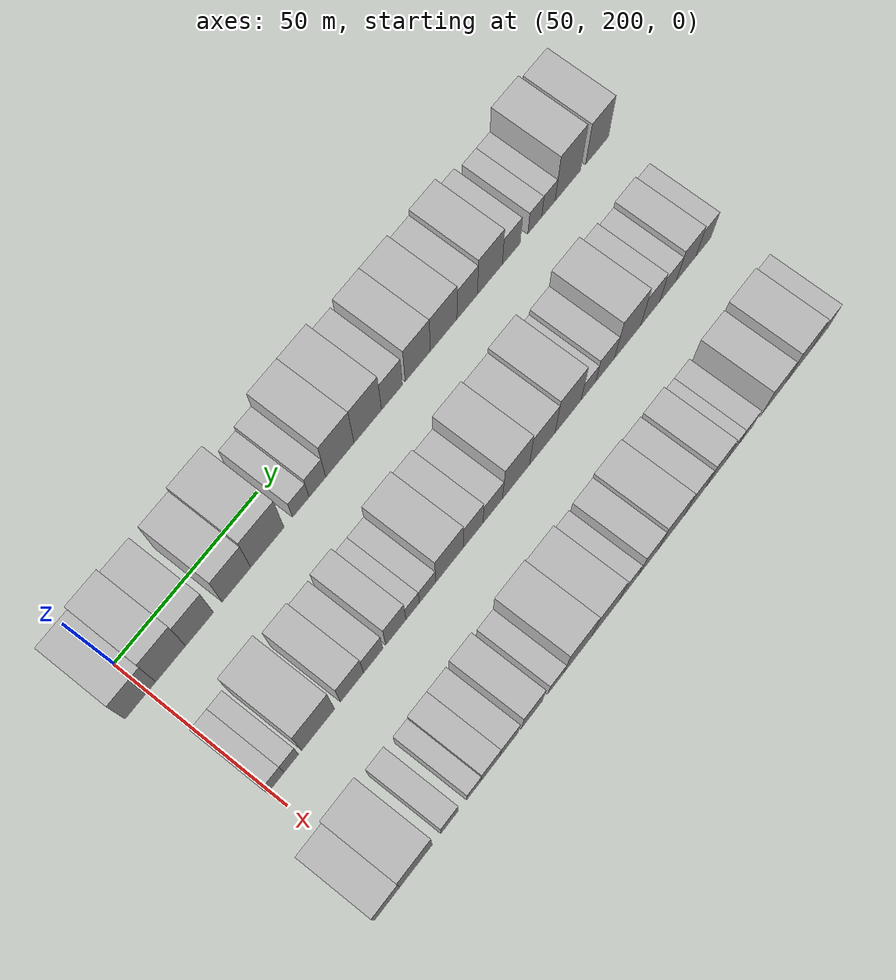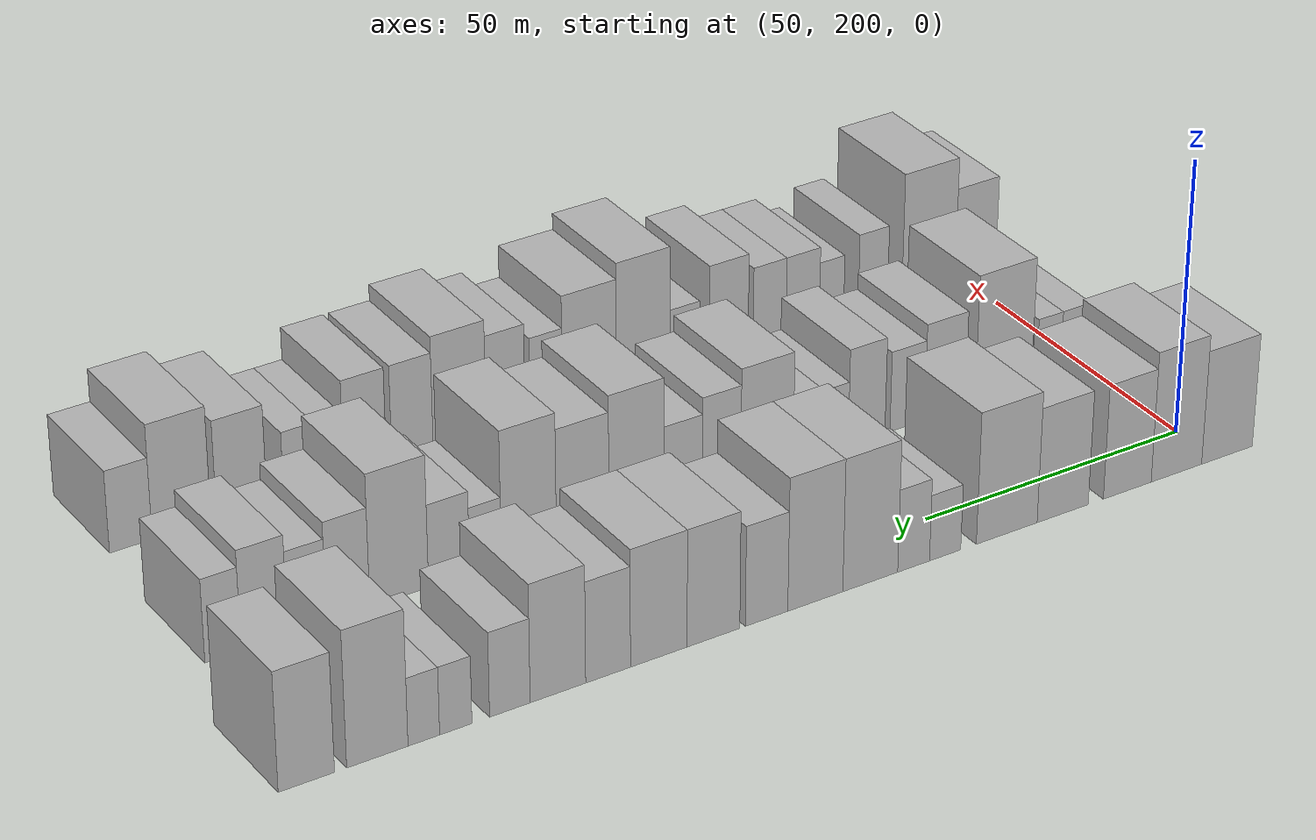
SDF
<sdf version="1.6">
 <world name="default">
  <model name="building_60">
   <static>1</static>
   <pose>50.0000 197.5814 0 0.000000 0.000000 0.000000</pose>
   <link name="link">
    <pose>0 0 10.50 0 0 0</pose>
    <collision name="collision"><geometry><box><size>20.0000 10.3683 21.0000</size></box></geometry></collision>
    <visual name="visual">
     <cast_shadows>0</cast_shadows>
     <geometry><box><size>20.0000 10.3683 21.0000</size></box></geometry>
     <material>
      <script>
       <uri>model://HANNAS_wall/materials/scripts</uri>
       <uri>model://HANNAS_wall/materials/textures</uri>
       <name>vrc/HANNAS_wall</name>
      </script>
     </material>
    </visual>
   </link>
  </model>
  <model name="building_61">
   <static>1</static>
   <pose>50.0000 207.8681 0 0.000000 0.000000 0.000000</pose>
   <link name="link">
    <pose>0 0 12.00 0 0 0</pose>
    <collision name="collision"><geometry><box><size>20.0000 10.2053 24.0000</size></box></geometry></collision>
    <visual name="visual">
     <cast_shadows>0</cast_shadows>
     <geometry><box><size>20.0000 10.2053 24.0000</size></box></geometry>
     <material>
      <script>
       <uri>model://HANNAS_wall/materials/scripts</uri>
       <uri>model://HANNAS_wall/materials/textures</uri>
       <name>vrc/HANNAS_wall</name>
      </script>
     </material>
    </visual>
   </link>
  </model>
  <model name="building_62">
   <static>1</static>
   <pose>50.0000 217.7414 0 0.000000 0.000000 0.000000</pose>
   <link name="link">
    <pose>0 0 10.50 0 0 0</pose>
    <collision name="collision"><geometry><box><size>20.0000 9.5413 21.0000</size></box></geometry></collision>
    <visual name="visual">
     <cast_shadows>0</cast_shadows>
     <geometry><box><size>20.0000 9.5413 21.0000</size></box></geometry>
     <material>
      <script>
       <uri>model://HANNAS_wall/materials/scripts</uri>
       <uri>model://HANNAS_wall/materials/textures</uri>
       <name>vrc/HANNAS_wall</name>
      </script>
     </material>
    </visual>
   </link>
  </model>
  <model name="building_63">
   <static>1</static>
   <pose>50.0000 230.5318 0 0.000000 0.000000 0.000000</pose>
   <link name="link">
    <pose>0 0 10.50 0 0 0</pose>
    <collision name="collision"><geometry><box><size>20.0000 10.0395 21.0000</size></box></geometry></collision>
    <visual name="visual">
     <cast_shadows>0</cast_shadows>
     <geometry><box><size>20.0000 10.0395 21.0000</size></box></geometry>
     <material>
      <script>
       <uri>model://HANNAS_wall/materials/scripts</uri>
       <uri>model://HANNAS_wall/materials/textures</uri>
       <name>vrc/HANNAS_wall</name>
      </script>
     </material>
    </visual>
   </link>
  </model>
  <model name="building_64">
   <static>1</static>
   <pose>50.0000 241.4395 0 0.000000 0.000000 0.000000</pose>
   <link name="link">
    <pose>0 0 12.00 0 0 0</pose>
    <collision name="collision"><geometry><box><size>20.0000 11.7759 24.0000</size></box></geometry></collision>
    <visual name="visual">
     <cast_shadows>0</cast_shadows>
     <geometry><box><size>20.0000 11.7759 24.0000</size></box></geometry>
     <material>
      <script>
       <uri>model://HANNAS_wall/materials/scripts</uri>
       <uri>model://HANNAS_wall/materials/textures</uri>
       <name>vrc/HANNAS_wall</name>
      </script>
     </material>
    </visual>
   </link>
  </model>
  <model name="building_65">
   <static>1</static>
   <pose>50.0000 253.3082 0 0.000000 0.000000 0.000000</pose>
   <link name="link">
    <pose>0 0 6.00 0 0 0</pose>
    <collision name="collision"><geometry><box><size>20.0000 5.9616 12.0000</size></box></geometry></collision>
    <visual name="visual">
     <cast_shadows>0</cast_shadows>
     <geometry><box><size>20.0000 5.9616 12.0000</size></box></geometry>
     <material>
      <script>
       <uri>model://HANNAS_wall/materials/scripts</uri>
       <uri>model://HANNAS_wall/materials/textures</uri>
       <name>vrc/HANNAS_wall</name>
      </script>
     </material>
    </visual>
   </link>
  </model>
  <model name="building_66">
   <static>1</static>
   <pose>50.0000 259.2945 0 0.000000 0.000000 0.000000</pose>
   <link name="link">
    <pose>0 0 7.50 0 0 0</pose>
    <collision name="collision"><geometry><box><size>20.0000 6.0109 15.0000</size></box></geometry></collision>
    <visual name="visual">
     <cast_shadows>0</cast_shadows>
     <geometry><box><size>20.0000 6.0109 15.0000</size></box></geometry>
     <material>
      <script>
       <uri>model://HANNAS_wall/materials/scripts</uri>
       <uri>model://HANNAS_wall/materials/textures</uri>
       <name>vrc/HANNAS_wall</name>
      </script>
     </material>
    </visual>
   </link>
  </model>
  <model name="building_67">
   <static>1</static>
   <pose>50.0000 267.4410 0 0.000000 0.000000 0.000000</pose>
   <link name="link">
    <pose>0 0 12.00 0 0 0</pose>
    <collision name="collision"><geometry><box><size>20.0000 10.2821 24.0000</size></box></geometry></collision>
    <visual name="visual">
     <cast_shadows>0</cast_shadows>
     <geometry><box><size>20.0000 10.2821 24.0000</size></box></geometry>
     <material>
      <script>
       <uri>model://HANNAS_wall/materials/scripts</uri>
       <uri>model://HANNAS_wall/materials/textures</uri>
       <name>vrc/HANNAS_wall</name>
      </script>
     </material>
    </visual>
   </link>
  </model>
  <model name="building_68">
   <static>1</static>
   <pose>50.0000 277.6601 0 0.000000 0.000000 0.000000</pose>
   <link name="link">
    <pose>0 0 12.00 0 0 0</pose>
    <collision name="collision"><geometry><box><size>20.0000 10.1560 24.0000</size></box></geometry></collision>
    <visual name="visual">
     <cast_shadows>0</cast_shadows>
     <geometry><box><size>20.0000 10.1560 24.0000</size></box></geometry>
     <material>
      <script>
       <uri>model://HANNAS_wall/materials/scripts</uri>
       <uri>model://HANNAS_wall/materials/textures</uri>
       <name>vrc/HANNAS_wall</name>
      </script>
     </material>
    </visual>
   </link>
  </model>
  <model name="building_69">
   <static>1</static>
   <pose>50.0000 286.6164 0 0.000000 0.000000 0.000000</pose>
   <link name="link">
    <pose>0 0 9.00 0 0 0</pose>
    <collision name="collision"><geometry><box><size>20.0000 7.7567 18.0000</size></box></geometry></collision>
    <visual name="visual">
     <cast_shadows>0</cast_shadows>
     <geometry><box><size>20.0000 7.7567 18.0000</size></box></geometry>
     <material>
      <script>
       <uri>model://HANNAS_wall/materials/scripts</uri>
       <uri>model://HANNAS_wall/materials/textures</uri>
       <name>vrc/HANNAS_wall</name>
      </script>
     </material>
    </visual>
   </link>
  </model>
  <model name="building_70">
   <static>1</static>
   <pose>50.0000 296.2404 0 0.000000 0.000000 0.000000</pose>
   <link name="link">
    <pose>0 0 10.50 0 0 0</pose>
    <collision name="collision"><geometry><box><size>20.0000 9.4913 21.0000</size></box></geometry></collision>
    <visual name="visual">
     <cast_shadows>0</cast_shadows>
     <geometry><box><size>20.0000 9.4913 21.0000</size></box></geometry>
     <material>
      <script>
       <uri>model://HANNAS_wall/materials/scripts</uri>
       <uri>model://HANNAS_wall/materials/textures</uri>
       <name>vrc/HANNAS_wall</name>
      </script>
     </material>
    </visual>
   </link>
  </model>
  <model name="building_71">
   <static>1</static>
   <pose>50.0000 306.0205 0 0.000000 0.000000 0.000000</pose>
   <link name="link">
    <pose>0 0 10.50 0 0 0</pose>
    <collision name="collision"><geometry><box><size>20.0000 10.0688 21.0000</size></box></geometry></collision>
    <visual name="visual">
     <cast_shadows>0</cast_shadows>
     <geometry><box><size>20.0000 10.0688 21.0000</size></box></geometry>
     <material>
      <script>
       <uri>model://HANNAS_wall/materials/scripts</uri>
       <uri>model://HANNAS_wall/materials/textures</uri>
       <name>vrc/HANNAS_wall</name>
      </script>
     </material>
    </visual>
   </link>
  </model>
  <model name="building_72">
   <static>1</static>
   <pose>50.0000 314.9891 0 0.000000 0.000000 0.000000</pose>
   <link name="link">
    <pose>0 0 9.00 0 0 0</pose>
    <collision name="collision"><geometry><box><size>20.0000 7.8686 18.0000</size></box></geometry></collision>
    <visual name="visual">
     <cast_shadows>0</cast_shadows>
     <geometry><box><size>20.0000 7.8686 18.0000</size></box></geometry>
     <material>
      <script>
       <uri>model://HANNAS_wall/materials/scripts</uri>
       <uri>model://HANNAS_wall/materials/textures</uri>
       <name>vrc/HANNAS_wall</name>
      </script>
     </material>
    </visual>
   </link>
  </model>
  <model name="building_73">
   <static>1</static>
   <pose>50.0000 323.7444 0 0.000000 0.000000 0.000000</pose>
   <link name="link">
    <pose>0 0 10.50 0 0 0</pose>
    <collision name="collision"><geometry><box><size>20.0000 9.6419 21.0000</size></box></geometry></collision>
    <visual name="visual">
     <cast_shadows>0</cast_shadows>
     <geometry><box><size>20.0000 9.6419 21.0000</size></box></geometry>
     <material>
      <script>
       <uri>model://HANNAS_wall/materials/scripts</uri>
       <uri>model://HANNAS_wall/materials/textures</uri>
       <name>vrc/HANNAS_wall</name>
      </script>
     </material>
    </visual>
   </link>
  </model>
  <model name="building_74">
   <static>1</static>
   <pose>50.0000 332.0503 0 0.000000 0.000000 0.000000</pose>
   <link name="link">
    <pose>0 0 7.50 0 0 0</pose>
    <collision name="collision"><geometry><box><size>20.0000 6.9699 15.0000</size></box></geometry></collision>
    <visual name="visual">
     <cast_shadows>0</cast_shadows>
     <geometry><box><size>20.0000 6.9699 15.0000</size></box></geometry>
     <material>
      <script>
       <uri>model://HANNAS_wall/materials/scripts</uri>
       <uri>model://HANNAS_wall/materials/textures</uri>
       <name>vrc/HANNAS_wall</name>
      </script>
     </material>
    </visual>
   </link>
  </model>
  <model name="building_75">
   <static>1</static>
   <pose>50.0000 341.2771 0 0.000000 0.000000 0.000000</pose>
   <link name="link">
    <pose>0 0 6.00 0 0 0</pose>
    <collision name="collision"><geometry><box><size>20.0000 5.4839 12.0000</size></box></geometry></collision>
    <visual name="visual">
     <cast_shadows>0</cast_shadows>
     <geometry><box><size>20.0000 5.4839 12.0000</size></box></geometry>
     <material>
      <script>
       <uri>model://HANNAS_wall/materials/scripts</uri>
       <uri>model://HANNAS_wall/materials/textures</uri>
       <name>vrc/HANNAS_wall</name>
      </script>
     </material>
    </visual>
   </link>
  </model>
  <model name="building_76">
   <static>1</static>
   <pose>50.0000 346.6752 0 0.000000 0.000000 0.000000</pose>
   <link name="link">
    <pose>0 0 6.00 0 0 0</pose>
    <collision name="collision"><geometry><box><size>20.0000 5.3123 12.0000</size></box></geometry></collision>
    <visual name="visual">
     <cast_shadows>0</cast_shadows>
     <geometry><box><size>20.0000 5.3123 12.0000</size></box></geometry>
     <material>
      <script>
       <uri>model://HANNAS_wall/materials/scripts</uri>
       <uri>model://HANNAS_wall/materials/textures</uri>
       <name>vrc/HANNAS_wall</name>
      </script>
     </material>
    </visual>
   </link>
  </model>
  <model name="building_77">
   <static>1</static>
   <pose>50.0000 354.4404 0 0.000000 0.000000 0.000000</pose>
   <link name="link">
    <pose>0 0 12.00 0 0 0</pose>
    <collision name="collision"><geometry><box><size>20.0000 10.2181 24.0000</size></box></geometry></collision>
    <visual name="visual">
     <cast_shadows>0</cast_shadows>
     <geometry><box><size>20.0000 10.2181 24.0000</size></box></geometry>
     <material>
      <script>
       <uri>model://HANNAS_wall/materials/scripts</uri>
       <uri>model://HANNAS_wall/materials/textures</uri>
       <name>vrc/HANNAS_wall</name>
      </script>
     </material>
    </visual>
   </link>
  </model>
  <model name="building_78">
   <static>1</static>
   <pose>50.0000 366.1686 0 0.000000 0.000000 0.000000</pose>
   <link name="link">
    <pose>0 0 10.50 0 0 0</pose>
    <collision name="collision"><geometry><box><size>20.0000 9.2383 21.0000</size></box></geometry></collision>
    <visual name="visual">
     <cast_shadows>0</cast_shadows>
     <geometry><box><size>20.0000 9.2383 21.0000</size></box></geometry>
     <material>
      <script>
       <uri>model://HANNAS_wall/materials/scripts</uri>
       <uri>model://HANNAS_wall/materials/textures</uri>
       <name>vrc/HANNAS_wall</name>
      </script>
     </material>
    </visual>
   </link>
  </model>
  <model name="building_143">
   <static>1</static>
   <pose>85.0000 202.1746 0 0.000000 0.000000 0.000000</pose>
   <link name="link">
    <pose>0 0 6.00 0 0 0</pose>
    <collision name="collision"><geometry><box><size>20.0000 5.6919 12.0000</size></box></geometry></collision>
    <visual name="visual">
     <cast_shadows>0</cast_shadows>
     <geometry><box><size>20.0000 5.6919 12.0000</size></box></geometry>
     <material>
      <script>
       <uri>model://HANNAS_wall/materials/scripts</uri>
       <uri>model://HANNAS_wall/materials/textures</uri>
       <name>vrc/HANNAS_wall</name>
      </script>
     </material>
    </visual>
   </link>
  </model>
  <model name="building_144">
   <static>1</static>
   <pose>85.0000 207.5154 0 0.000000 0.000000 0.000000</pose>
   <link name="link">
    <pose>0 0 6.00 0 0 0</pose>
    <collision name="collision"><geometry><box><size>20.0000 4.9896 12.0000</size></box></geometry></collision>
    <visual name="visual">
     <cast_shadows>0</cast_shadows>
     <geometry><box><size>20.0000 4.9896 12.0000</size></box></geometry>
     <material>
      <script>
       <uri>model://HANNAS_wall/materials/scripts</uri>
       <uri>model://HANNAS_wall/materials/textures</uri>
       <name>vrc/HANNAS_wall</name>
      </script>
     </material>
    </visual>
   </link>
  </model>
  <model name="building_145">
   <static>1</static>
   <pose>85.0000 216.7356 0 0.000000 0.000000 0.000000</pose>
   <link name="link">
    <pose>0 0 12.00 0 0 0</pose>
    <collision name="collision"><geometry><box><size>20.0000 11.4508 24.0000</size></box></geometry></collision>
    <visual name="visual">
     <cast_shadows>0</cast_shadows>
     <geometry><box><size>20.0000 11.4508 24.0000</size></box></geometry>
     <material>
      <script>
       <uri>model://HANNAS_wall/materials/scripts</uri>
       <uri>model://HANNAS_wall/materials/textures</uri>
       <name>vrc/HANNAS_wall</name>
      </script>
     </material>
    </visual>
   </link>
  </model>
  <model name="building_146">
   <static>1</static>
   <pose>85.0000 228.5396 0 0.000000 0.000000 0.000000</pose>
   <link name="link">
    <pose>0 0 9.00 0 0 0</pose>
    <collision name="collision"><geometry><box><size>20.0000 8.1572 18.0000</size></box></geometry></collision>
    <visual name="visual">
     <cast_shadows>0</cast_shadows>
     <geometry><box><size>20.0000 8.1572 18.0000</size></box></geometry>
     <material>
      <script>
       <uri>model://HANNAS_wall/materials/scripts</uri>
       <uri>model://HANNAS_wall/materials/textures</uri>
       <name>vrc/HANNAS_wall</name>
      </script>
     </material>
    </visual>
   </link>
  </model>
  <model name="building_147">
   <static>1</static>
   <pose>85.0000 236.0549 0 0.000000 0.000000 0.000000</pose>
   <link name="link">
    <pose>0 0 7.50 0 0 0</pose>
    <collision name="collision"><geometry><box><size>20.0000 6.8735 15.0000</size></box></geometry></collision>
    <visual name="visual">
     <cast_shadows>0</cast_shadows>
     <geometry><box><size>20.0000 6.8735 15.0000</size></box></geometry>
     <material>
      <script>
       <uri>model://HANNAS_wall/materials/scripts</uri>
       <uri>model://HANNAS_wall/materials/textures</uri>
       <name>vrc/HANNAS_wall</name>
      </script>
     </material>
    </visual>
   </link>
  </model>
  <model name="building_148">
   <static>1</static>
   <pose>85.0000 244.0991 0 0.000000 0.000000 0.000000</pose>
   <link name="link">
    <pose>0 0 9.00 0 0 0</pose>
    <collision name="collision"><geometry><box><size>20.0000 7.2148 18.0000</size></box></geometry></collision>
    <visual name="visual">
     <cast_shadows>0</cast_shadows>
     <geometry><box><size>20.0000 7.2148 18.0000</size></box></geometry>
     <material>
      <script>
       <uri>model://HANNAS_wall/materials/scripts</uri>
       <uri>model://HANNAS_wall/materials/textures</uri>
       <name>vrc/HANNAS_wall</name>
      </script>
     </material>
    </visual>
   </link>
  </model>
  <model name="building_149">
   <static>1</static>
   <pose>85.0000 250.1289 0 0.000000 0.000000 0.000000</pose>
   <link name="link">
    <pose>0 0 6.00 0 0 0</pose>
    <collision name="collision"><geometry><box><size>20.0000 4.8449 12.0000</size></box></geometry></collision>
    <visual name="visual">
     <cast_shadows>0</cast_shadows>
     <geometry><box><size>20.0000 4.8449 12.0000</size></box></geometry>
     <material>
      <script>
       <uri>model://HANNAS_wall/materials/scripts</uri>
       <uri>model://HANNAS_wall/materials/textures</uri>
       <name>vrc/HANNAS_wall</name>
      </script>
     </material>
    </visual>
   </link>
  </model>
  <model name="building_150">
   <static>1</static>
   <pose>85.0000 255.5011 0 0.000000 0.000000 0.000000</pose>
   <link name="link">
    <pose>0 0 6.00 0 0 0</pose>
    <collision name="collision"><geometry><box><size>20.0000 5.8996 12.0000</size></box></geometry></collision>
    <visual name="visual">
     <cast_shadows>0</cast_shadows>
     <geometry><box><size>20.0000 5.8996 12.0000</size></box></geometry>
     <material>
      <script>
       <uri>model://HANNAS_wall/materials/scripts</uri>
       <uri>model://HANNAS_wall/materials/textures</uri>
       <name>vrc/HANNAS_wall</name>
      </script>
     </material>
    </visual>
   </link>
  </model>
  <model name="building_151">
   <static>1</static>
   <pose>85.0000 263.4760 0 0.000000 0.000000 0.000000</pose>
   <link name="link">
    <pose>0 0 10.50 0 0 0</pose>
    <collision name="collision"><geometry><box><size>20.0000 10.0502 21.0000</size></box></geometry></collision>
    <visual name="visual">
     <cast_shadows>0</cast_shadows>
     <geometry><box><size>20.0000 10.0502 21.0000</size></box></geometry>
     <material>
      <script>
       <uri>model://HANNAS_wall/materials/scripts</uri>
       <uri>model://HANNAS_wall/materials/textures</uri>
       <name>vrc/HANNAS_wall</name>
      </script>
     </material>
    </visual>
   </link>
  </model>
  <model name="building_152">
   <static>1</static>
   <pose>85.0000 272.1502 0 0.000000 0.000000 0.000000</pose>
   <link name="link">
    <pose>0 0 9.00 0 0 0</pose>
    <collision name="collision"><geometry><box><size>20.0000 7.2982 18.0000</size></box></geometry></collision>
    <visual name="visual">
     <cast_shadows>0</cast_shadows>
     <geometry><box><size>20.0000 7.2982 18.0000</size></box></geometry>
     <material>
      <script>
       <uri>model://HANNAS_wall/materials/scripts</uri>
       <uri>model://HANNAS_wall/materials/textures</uri>
       <name>vrc/HANNAS_wall</name>
      </script>
     </material>
    </visual>
   </link>
  </model>
  <model name="building_153">
   <static>1</static>
   <pose>85.0000 279.4177 0 0.000000 0.000000 0.000000</pose>
   <link name="link">
    <pose>0 0 7.50 0 0 0</pose>
    <collision name="collision"><geometry><box><size>20.0000 7.2368 15.0000</size></box></geometry></collision>
    <visual name="visual">
     <cast_shadows>0</cast_shadows>
     <geometry><box><size>20.0000 7.2368 15.0000</size></box></geometry>
     <material>
      <script>
       <uri>model://HANNAS_wall/materials/scripts</uri>
       <uri>model://HANNAS_wall/materials/textures</uri>
       <name>vrc/HANNAS_wall</name>
      </script>
     </material>
    </visual>
   </link>
  </model>
  <model name="building_154">
   <static>1</static>
   <pose>85.0000 288.1340 0 0.000000 0.000000 0.000000</pose>
   <link name="link">
    <pose>0 0 12.00 0 0 0</pose>
    <collision name="collision"><geometry><box><size>20.0000 10.1958 24.0000</size></box></geometry></collision>
    <visual name="visual">
     <cast_shadows>0</cast_shadows>
     <geometry><box><size>20.0000 10.1958 24.0000</size></box></geometry>
     <material>
      <script>
       <uri>model://HANNAS_wall/materials/scripts</uri>
       <uri>model://HANNAS_wall/materials/textures</uri>
       <name>vrc/HANNAS_wall</name>
      </script>
     </material>
    </visual>
   </link>
  </model>
  <model name="building_155">
   <static>1</static>
   <pose>85.0000 298.0592 0 0.000000 0.000000 0.000000</pose>
   <link name="link">
    <pose>0 0 10.50 0 0 0</pose>
    <collision name="collision"><geometry><box><size>20.0000 9.6546 21.0000</size></box></geometry></collision>
    <visual name="visual">
     <cast_shadows>0</cast_shadows>
     <geometry><box><size>20.0000 9.6546 21.0000</size></box></geometry>
     <material>
      <script>
       <uri>model://HANNAS_wall/materials/scripts</uri>
       <uri>model://HANNAS_wall/materials/textures</uri>
       <name>vrc/HANNAS_wall</name>
      </script>
     </material>
    </visual>
   </link>
  </model>
  <model name="building_156">
   <static>1</static>
   <pose>85.0000 307.8840 0 0.000000 0.000000 0.000000</pose>
   <link name="link">
    <pose>0 0 12.00 0 0 0</pose>
    <collision name="collision"><geometry><box><size>20.0000 9.9949 24.0000</size></box></geometry></collision>
    <visual name="visual">
     <cast_shadows>0</cast_shadows>
     <geometry><box><size>20.0000 9.9949 24.0000</size></box></geometry>
     <material>
      <script>
       <uri>model://HANNAS_wall/materials/scripts</uri>
       <uri>model://HANNAS_wall/materials/textures</uri>
       <name>vrc/HANNAS_wall</name>
      </script>
     </material>
    </visual>
   </link>
  </model>
  <model name="building_157">
   <static>1</static>
   <pose>85.0000 315.7359 0 0.000000 0.000000 0.000000</pose>
   <link name="link">
    <pose>0 0 6.00 0 0 0</pose>
    <collision name="collision"><geometry><box><size>20.0000 5.7089 12.0000</size></box></geometry></collision>
    <visual name="visual">
     <cast_shadows>0</cast_shadows>
     <geometry><box><size>20.0000 5.7089 12.0000</size></box></geometry>
     <material>
      <script>
       <uri>model://HANNAS_wall/materials/scripts</uri>
       <uri>model://HANNAS_wall/materials/textures</uri>
       <name>vrc/HANNAS_wall</name>
      </script>
     </material>
    </visual>
   </link>
  </model>
  <model name="building_158">
   <static>1</static>
   <pose>85.0000 322.2467 0 0.000000 0.000000 0.000000</pose>
   <link name="link">
    <pose>0 0 7.50 0 0 0</pose>
    <collision name="collision"><geometry><box><size>20.0000 7.3128 15.0000</size></box></geometry></collision>
    <visual name="visual">
     <cast_shadows>0</cast_shadows>
     <geometry><box><size>20.0000 7.3128 15.0000</size></box></geometry>
     <material>
      <script>
       <uri>model://HANNAS_wall/materials/scripts</uri>
       <uri>model://HANNAS_wall/materials/textures</uri>
       <name>vrc/HANNAS_wall</name>
      </script>
     </material>
    </visual>
   </link>
  </model>
  <model name="building_159">
   <static>1</static>
   <pose>85.0000 331.0689 0 0.000000 0.000000 0.000000</pose>
   <link name="link">
    <pose>0 0 12.00 0 0 0</pose>
    <collision name="collision"><geometry><box><size>20.0000 10.3315 24.0000</size></box></geometry></collision>
    <visual name="visual">
     <cast_shadows>0</cast_shadows>
     <geometry><box><size>20.0000 10.3315 24.0000</size></box></geometry>
     <material>
      <script>
       <uri>model://HANNAS_wall/materials/scripts</uri>
       <uri>model://HANNAS_wall/materials/textures</uri>
       <name>vrc/HANNAS_wall</name>
      </script>
     </material>
    </visual>
   </link>
  </model>
  <model name="building_160">
   <static>1</static>
   <pose>85.0000 340.0118 0 0.000000 0.000000 0.000000</pose>
   <link name="link">
    <pose>0 0 9.00 0 0 0</pose>
    <collision name="collision"><geometry><box><size>20.0000 7.5541 18.0000</size></box></geometry></collision>
    <visual name="visual">
     <cast_shadows>0</cast_shadows>
     <geometry><box><size>20.0000 7.5541 18.0000</size></box></geometry>
     <material>
      <script>
       <uri>model://HANNAS_wall/materials/scripts</uri>
       <uri>model://HANNAS_wall/materials/textures</uri>
       <name>vrc/HANNAS_wall</name>
      </script>
     </material>
    </visual>
   </link>
  </model>
  <model name="building_161">
   <static>1</static>
   <pose>85.0000 347.1262 0 0.000000 0.000000 0.000000</pose>
   <link name="link">
    <pose>0 0 7.50 0 0 0</pose>
    <collision name="collision"><geometry><box><size>20.0000 6.6747 15.0000</size></box></geometry></collision>
    <visual name="visual">
     <cast_shadows>0</cast_shadows>
     <geometry><box><size>20.0000 6.6747 15.0000</size></box></geometry>
     <material>
      <script>
       <uri>model://HANNAS_wall/materials/scripts</uri>
       <uri>model://HANNAS_wall/materials/textures</uri>
       <name>vrc/HANNAS_wall</name>
      </script>
     </material>
    </visual>
   </link>
  </model>
  <model name="building_162">
   <static>1</static>
   <pose>85.0000 354.4357 0 0.000000 0.000000 0.000000</pose>
   <link name="link">
    <pose>0 0 9.00 0 0 0</pose>
    <collision name="collision"><geometry><box><size>20.0000 7.9442 18.0000</size></box></geometry></collision>
    <visual name="visual">
     <cast_shadows>0</cast_shadows>
     <geometry><box><size>20.0000 7.9442 18.0000</size></box></geometry>
     <material>
      <script>
       <uri>model://HANNAS_wall/materials/scripts</uri>
       <uri>model://HANNAS_wall/materials/textures</uri>
       <name>vrc/HANNAS_wall</name>
      </script>
     </material>
    </visual>
   </link>
  </model>
  <model name="building_163">
   <static>1</static>
   <pose>85.0000 361.4779 0 0.000000 0.000000 0.000000</pose>
   <link name="link">
    <pose>0 0 7.50 0 0 0</pose>
    <collision name="collision"><geometry><box><size>20.0000 6.1402 15.0000</size></box></geometry></collision>
    <visual name="visual">
     <cast_shadows>0</cast_shadows>
     <geometry><box><size>20.0000 6.1402 15.0000</size></box></geometry>
     <material>
      <script>
       <uri>model://HANNAS_wall/materials/scripts</uri>
       <uri>model://HANNAS_wall/materials/textures</uri>
       <name>vrc/HANNAS_wall</name>
      </script>
     </material>
    </visual>
   </link>
  </model>
  <model name="building_223">
   <static>1</static>
   <pose>120.0000 197.2749 0 0.000000 0.000000 0.000000</pose>
   <link name="link">
    <pose>0 0 9.00 0 0 0</pose>
    <collision name="collision"><geometry><box><size>20.0000 8.6225 18.0000</size></box></geometry></collision>
    <visual name="visual">
     <cast_shadows>0</cast_shadows>
     <geometry><box><size>20.0000 8.6225 18.0000</size></box></geometry>
     <material>
      <script>
       <uri>model://HANNAS_wall/materials/scripts</uri>
       <uri>model://HANNAS_wall/materials/textures</uri>
       <name>vrc/HANNAS_wall</name>
      </script>
     </material>
    </visual>
   </link>
  </model>
  <model name="building_224">
   <static>1</static>
   <pose>120.0000 207.1720 0 0.000000 0.000000 0.000000</pose>
   <link name="link">
    <pose>0 0 12.00 0 0 0</pose>
    <collision name="collision"><geometry><box><size>20.0000 11.1717 24.0000</size></box></geometry></collision>
    <visual name="visual">
     <cast_shadows>0</cast_shadows>
     <geometry><box><size>20.0000 11.1717 24.0000</size></box></geometry>
     <material>
      <script>
       <uri>model://HANNAS_wall/materials/scripts</uri>
       <uri>model://HANNAS_wall/materials/textures</uri>
       <name>vrc/HANNAS_wall</name>
      </script>
     </material>
    </visual>
   </link>
  </model>
  <model name="building_225">
   <static>1</static>
   <pose>120.0000 218.7835 0 0.000000 0.000000 0.000000</pose>
   <link name="link">
    <pose>0 0 7.50 0 0 0</pose>
    <collision name="collision"><geometry><box><size>20.0000 6.0513 15.0000</size></box></geometry></collision>
    <visual name="visual">
     <cast_shadows>0</cast_shadows>
     <geometry><box><size>20.0000 6.0513 15.0000</size></box></geometry>
     <material>
      <script>
       <uri>model://HANNAS_wall/materials/scripts</uri>
       <uri>model://HANNAS_wall/materials/textures</uri>
       <name>vrc/HANNAS_wall</name>
      </script>
     </material>
    </visual>
   </link>
  </model>
  <model name="building_226">
   <static>1</static>
   <pose>120.0000 227.2994 0 0.000000 0.000000 0.000000</pose>
   <link name="link">
    <pose>0 0 6.00 0 0 0</pose>
    <collision name="collision"><geometry><box><size>20.0000 4.9806 12.0000</size></box></geometry></collision>
    <visual name="visual">
     <cast_shadows>0</cast_shadows>
     <geometry><box><size>20.0000 4.9806 12.0000</size></box></geometry>
     <material>
      <script>
       <uri>model://HANNAS_wall/materials/scripts</uri>
       <uri>model://HANNAS_wall/materials/textures</uri>
       <name>vrc/HANNAS_wall</name>
      </script>
     </material>
    </visual>
   </link>
  </model>
  <model name="building_227">
   <static>1</static>
   <pose>120.0000 233.1699 0 0.000000 0.000000 0.000000</pose>
   <link name="link">
    <pose>0 0 7.50 0 0 0</pose>
    <collision name="collision"><geometry><box><size>20.0000 6.7605 15.0000</size></box></geometry></collision>
    <visual name="visual">
     <cast_shadows>0</cast_shadows>
     <geometry><box><size>20.0000 6.7605 15.0000</size></box></geometry>
     <material>
      <script>
       <uri>model://HANNAS_wall/materials/scripts</uri>
       <uri>model://HANNAS_wall/materials/textures</uri>
       <name>vrc/HANNAS_wall</name>
      </script>
     </material>
    </visual>
   </link>
  </model>
  <model name="building_228">
   <static>1</static>
   <pose>120.0000 239.8699 0 0.000000 0.000000 0.000000</pose>
   <link name="link">
    <pose>0 0 7.50 0 0 0</pose>
    <collision name="collision"><geometry><box><size>20.0000 6.6394 15.0000</size></box></geometry></collision>
    <visual name="visual">
     <cast_shadows>0</cast_shadows>
     <geometry><box><size>20.0000 6.6394 15.0000</size></box></geometry>
     <material>
      <script>
       <uri>model://HANNAS_wall/materials/scripts</uri>
       <uri>model://HANNAS_wall/materials/textures</uri>
       <name>vrc/HANNAS_wall</name>
      </script>
     </material>
    </visual>
   </link>
  </model>
  <model name="building_229">
   <static>1</static>
   <pose>120.0000 248.0553 0 0.000000 0.000000 0.000000</pose>
   <link name="link">
    <pose>0 0 9.00 0 0 0</pose>
    <collision name="collision"><geometry><box><size>20.0000 7.7314 18.0000</size></box></geometry></collision>
    <visual name="visual">
     <cast_shadows>0</cast_shadows>
     <geometry><box><size>20.0000 7.7314 18.0000</size></box></geometry>
     <material>
      <script>
       <uri>model://HANNAS_wall/materials/scripts</uri>
       <uri>model://HANNAS_wall/materials/textures</uri>
       <name>vrc/HANNAS_wall</name>
      </script>
     </material>
    </visual>
   </link>
  </model>
  <model name="building_230">
   <static>1</static>
   <pose>120.0000 256.8327 0 0.000000 0.000000 0.000000</pose>
   <link name="link">
    <pose>0 0 6.00 0 0 0</pose>
    <collision name="collision"><geometry><box><size>20.0000 5.8233 12.0000</size></box></geometry></collision>
    <visual name="visual">
     <cast_shadows>0</cast_shadows>
     <geometry><box><size>20.0000 5.8233 12.0000</size></box></geometry>
     <material>
      <script>
       <uri>model://HANNAS_wall/materials/scripts</uri>
       <uri>model://HANNAS_wall/materials/textures</uri>
       <name>vrc/HANNAS_wall</name>
      </script>
     </material>
    </visual>
   </link>
  </model>
  <model name="building_231">
   <static>1</static>
   <pose>120.0000 264.9719 0 0.000000 0.000000 0.000000</pose>
   <link name="link">
    <pose>0 0 12.00 0 0 0</pose>
    <collision name="collision"><geometry><box><size>20.0000 10.4552 24.0000</size></box></geometry></collision>
    <visual name="visual">
     <cast_shadows>0</cast_shadows>
     <geometry><box><size>20.0000 10.4552 24.0000</size></box></geometry>
     <material>
      <script>
       <uri>model://HANNAS_wall/materials/scripts</uri>
       <uri>model://HANNAS_wall/materials/textures</uri>
       <name>vrc/HANNAS_wall</name>
      </script>
     </material>
    </visual>
   </link>
  </model>
  <model name="building_232">
   <static>1</static>
   <pose>120.0000 275.4180 0 0.000000 0.000000 0.000000</pose>
   <link name="link">
    <pose>0 0 10.50 0 0 0</pose>
    <collision name="collision"><geometry><box><size>20.0000 10.4370 21.0000</size></box></geometry></collision>
    <visual name="visual">
     <cast_shadows>0</cast_shadows>
     <geometry><box><size>20.0000 10.4370 21.0000</size></box></geometry>
     <material>
      <script>
       <uri>model://HANNAS_wall/materials/scripts</uri>
       <uri>model://HANNAS_wall/materials/textures</uri>
       <name>vrc/HANNAS_wall</name>
      </script>
     </material>
    </visual>
   </link>
  </model>
  <model name="building_233">
   <static>1</static>
   <pose>120.0000 283.7048 0 0.000000 0.000000 0.000000</pose>
   <link name="link">
    <pose>0 0 7.50 0 0 0</pose>
    <collision name="collision"><geometry><box><size>20.0000 6.1366 15.0000</size></box></geometry></collision>
    <visual name="visual">
     <cast_shadows>0</cast_shadows>
     <geometry><box><size>20.0000 6.1366 15.0000</size></box></geometry>
     <material>
      <script>
       <uri>model://HANNAS_wall/materials/scripts</uri>
       <uri>model://HANNAS_wall/materials/textures</uri>
       <name>vrc/HANNAS_wall</name>
      </script>
     </material>
    </visual>
   </link>
  </model>
  <model name="building_234">
   <static>1</static>
   <pose>120.0000 291.4537 0 0.000000 0.000000 0.000000</pose>
   <link name="link">
    <pose>0 0 9.00 0 0 0</pose>
    <collision name="collision"><geometry><box><size>20.0000 7.3610 18.0000</size></box></geometry></collision>
    <visual name="visual">
     <cast_shadows>0</cast_shadows>
     <geometry><box><size>20.0000 7.3610 18.0000</size></box></geometry>
     <material>
      <script>
       <uri>model://HANNAS_wall/materials/scripts</uri>
       <uri>model://HANNAS_wall/materials/textures</uri>
       <name>vrc/HANNAS_wall</name>
      </script>
     </material>
    </visual>
   </link>
  </model>
  <model name="building_235">
   <static>1</static>
   <pose>120.0000 300.1061 0 0.000000 0.000000 0.000000</pose>
   <link name="link">
    <pose>0 0 10.50 0 0 0</pose>
    <collision name="collision"><geometry><box><size>20.0000 9.9438 21.0000</size></box></geometry></collision>
    <visual name="visual">
     <cast_shadows>0</cast_shadows>
     <geometry><box><size>20.0000 9.9438 21.0000</size></box></geometry>
     <material>
      <script>
       <uri>model://HANNAS_wall/materials/scripts</uri>
       <uri>model://HANNAS_wall/materials/textures</uri>
       <name>vrc/HANNAS_wall</name>
      </script>
     </material>
    </visual>
   </link>
  </model>
  <model name="building_236">
   <static>1</static>
   <pose>120.0000 308.8984 0 0.000000 0.000000 0.000000</pose>
   <link name="link">
    <pose>0 0 9.00 0 0 0</pose>
    <collision name="collision"><geometry><box><size>20.0000 7.6408 18.0000</size></box></geometry></collision>
    <visual name="visual">
     <cast_shadows>0</cast_shadows>
     <geometry><box><size>20.0000 7.6408 18.0000</size></box></geometry>
     <material>
      <script>
       <uri>model://HANNAS_wall/materials/scripts</uri>
       <uri>model://HANNAS_wall/materials/textures</uri>
       <name>vrc/HANNAS_wall</name>
      </script>
     </material>
    </visual>
   </link>
  </model>
  <model name="building_237">
   <static>1</static>
   <pose>120.0000 317.6042 0 0.000000 0.000000 0.000000</pose>
   <link name="link">
    <pose>0 0 9.00 0 0 0</pose>
    <collision name="collision"><geometry><box><size>20.0000 7.7708 18.0000</size></box></geometry></collision>
    <visual name="visual">
     <cast_shadows>0</cast_shadows>
     <geometry><box><size>20.0000 7.7708 18.0000</size></box></geometry>
     <material>
      <script>
       <uri>model://HANNAS_wall/materials/scripts</uri>
       <uri>model://HANNAS_wall/materials/textures</uri>
       <name>vrc/HANNAS_wall</name>
      </script>
     </material>
    </visual>
   </link>
  </model>
  <model name="building_238">
   <static>1</static>
   <pose>120.0000 324.0568 0 0.000000 0.000000 0.000000</pose>
   <link name="link">
    <pose>0 0 6.00 0 0 0</pose>
    <collision name="collision"><geometry><box><size>20.0000 5.1344 12.0000</size></box></geometry></collision>
    <visual name="visual">
     <cast_shadows>0</cast_shadows>
     <geometry><box><size>20.0000 5.1344 12.0000</size></box></geometry>
     <material>
      <script>
       <uri>model://HANNAS_wall/materials/scripts</uri>
       <uri>model://HANNAS_wall/materials/textures</uri>
       <name>vrc/HANNAS_wall</name>
      </script>
     </material>
    </visual>
   </link>
  </model>
  <model name="building_239">
   <static>1</static>
   <pose>120.0000 329.5298 0 0.000000 0.000000 0.000000</pose>
   <link name="link">
    <pose>0 0 6.00 0 0 0</pose>
    <collision name="collision"><geometry><box><size>20.0000 5.8116 12.0000</size></box></geometry></collision>
    <visual name="visual">
     <cast_shadows>0</cast_shadows>
     <geometry><box><size>20.0000 5.8116 12.0000</size></box></geometry>
     <material>
      <script>
       <uri>model://HANNAS_wall/materials/scripts</uri>
       <uri>model://HANNAS_wall/materials/textures</uri>
       <name>vrc/HANNAS_wall</name>
      </script>
     </material>
    </visual>
   </link>
  </model>
  <model name="building_240">
   <static>1</static>
   <pose>120.0000 339.9187 0 0.000000 0.000000 0.000000</pose>
   <link name="link">
    <pose>0 0 9.00 0 0 0</pose>
    <collision name="collision"><geometry><box><size>20.0000 8.9660 18.0000</size></box></geometry></collision>
    <visual name="visual">
     <cast_shadows>0</cast_shadows>
     <geometry><box><size>20.0000 8.9660 18.0000</size></box></geometry>
     <material>
      <script>
       <uri>model://HANNAS_wall/materials/scripts</uri>
       <uri>model://HANNAS_wall/materials/textures</uri>
       <name>vrc/HANNAS_wall</name>
      </script>
     </material>
    </visual>
   </link>
  </model>
  <model name="building_241">
   <static>1</static>
   <pose>120.0000 350.5630 0 0.000000 0.000000 0.000000</pose>
   <link name="link">
    <pose>0 0 10.50 0 0 0</pose>
    <collision name="collision"><geometry><box><size>20.0000 10.3227 21.0000</size></box></geometry></collision>
    <visual name="visual">
     <cast_shadows>0</cast_shadows>
     <geometry><box><size>20.0000 10.3227 21.0000</size></box></geometry>
     <material>
      <script>
       <uri>model://HANNAS_wall/materials/scripts</uri>
       <uri>model://HANNAS_wall/materials/textures</uri>
       <name>vrc/HANNAS_wall</name>
      </script>
     </material>
    </visual>
   </link>
  </model>
  <model name="building_242">
   <static>1</static>
   <pose>120.0000 359.4457 0 0.000000 0.000000 0.000000</pose>
   <link name="link">
    <pose>0 0 7.50 0 0 0</pose>
    <collision name="collision"><geometry><box><size>20.0000 7.4427 15.0000</size></box></geometry></collision>
    <visual name="visual">
     <cast_shadows>0</cast_shadows>
     <geometry><box><size>20.0000 7.4427 15.0000</size></box></geometry>
     <material>
      <script>
       <uri>model://HANNAS_wall/materials/scripts</uri>
       <uri>model://HANNAS_wall/materials/textures</uri>
       <name>vrc/HANNAS_wall</name>
      </script>
     </material>
    </visual>
   </link>
  </model>
 </world>
</sdf>
